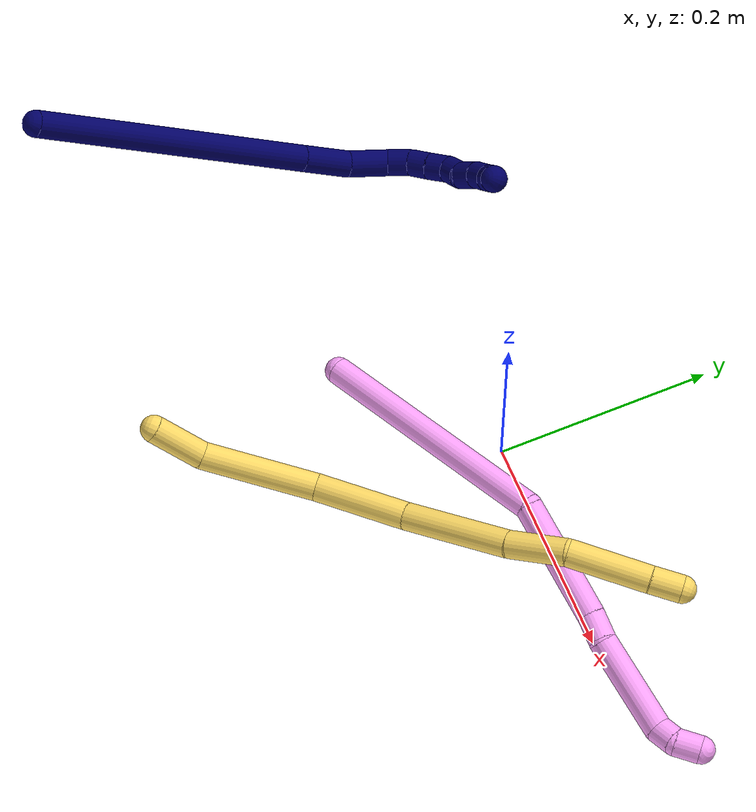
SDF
<sdf version="1.7">
 <world name="default">
  <model name="4">
   <static>0</static>
   <link name="4">
    <collision name="collision-cylinder-e_1_1_4">
     <pose>0.038734 0.073724 0.080652 -0.740551 0.340659 -0.133333</pose>
     <geometry><cylinder><radius>0.0125</radius><length>0.231864</length></cylinder></geometry>
     <surface>
      <friction><ode><mu>1.16</mu><mu2>1.16</mu2><slip1>0</slip1><slip2>0</slip2></ode></friction>
      <contact><ode><kp>1e+06</kp><kd>1</kd><max_vel>0</max_vel><min_depth>0.001</min_depth></ode></contact>
     </surface>
    </collision>
    <visual name="visual-cylinder-e_1_1_4">
     <pose>0.038734 0.073724 0.080652 -0.740551 0.340659 -0.133333</pose>
     <geometry><cylinder><radius>0.0125</radius><length>0.231864</length></cylinder></geometry>
     <material><ambient>1 0.65098 0.996078 1</ambient></material>
    </visual>
    <collision name="collision-cylinder-e_2_4_5">
     <pose>0.108981 0.189998 0.176767 -1.22223 0.608088 -0.432761</pose>
     <geometry><cylinder><radius>0.0125</radius><length>0.110323</length></cylinder></geometry>
     <surface>
      <friction><ode><mu>1.16</mu><mu2>1.16</mu2><slip1>0</slip1><slip2>0</slip2></ode></friction>
      <contact><ode><kp>1e+06</kp><kd>1</kd><max_vel>0</max_vel><min_depth>0.001</min_depth></ode></contact>
     </surface>
    </collision>
    <visual name="visual-cylinder-e_2_4_5">
     <pose>0.108981 0.189998 0.176767 -1.22223 0.608088 -0.432761</pose>
     <geometry><cylinder><radius>0.0125</radius><length>0.110323</length></cylinder></geometry>
     <material><ambient>1 0.65098 0.996078 1</ambient></material>
    </visual>
    <collision name="collision-cylinder-e_3_5_6">
     <pose>0.149361 0.240576 0.196699 -1.06286 0.767655 -0.466179</pose>
     <geometry><cylinder><radius>0.0125</radius><length>0.025535</length></cylinder></geometry>
     <surface>
      <friction><ode><mu>1.16</mu><mu2>1.16</mu2><slip1>0</slip1><slip2>0</slip2></ode></friction>
      <contact><ode><kp>1e+06</kp><kd>1</kd><max_vel>0</max_vel><min_depth>0.001</min_depth></ode></contact>
     </surface>
    </collision>
    <visual name="visual-cylinder-e_3_5_6">
     <pose>0.149361 0.240576 0.196699 -1.06286 0.767655 -0.466179</pose>
     <geometry><cylinder><radius>0.0125</radius><length>0.025535</length></cylinder></geometry>
     <material><ambient>1 0.65098 0.996078 1</ambient></material>
    </visual>
    <collision name="collision-cylinder-e_4_6_7">
     <pose>0.181493 0.284481 0.213299 -1.2447 0.550854 -0.400101</pose>
     <geometry><cylinder><radius>0.0125</radius><length>0.088897</length></cylinder></geometry>
     <surface>
      <friction><ode><mu>1.16</mu><mu2>1.16</mu2><slip1>0</slip1><slip2>0</slip2></ode></friction>
      <contact><ode><kp>1e+06</kp><kd>1</kd><max_vel>0</max_vel><min_depth>0.001</min_depth></ode></contact>
     </surface>
    </collision>
    <visual name="visual-cylinder-e_4_6_7">
     <pose>0.181493 0.284481 0.213299 -1.2447 0.550854 -0.400101</pose>
     <geometry><cylinder><radius>0.0125</radius><length>0.088897</length></cylinder></geometry>
     <material><ambient>1 0.65098 0.996078 1</ambient></material>
    </visual>
    <collision name="collision-cylinder-e_5_7_8">
     <pose>0.208508 0.32636 0.23268 -0.691646 0.379238 -0.138082</pose>
     <geometry><cylinder><radius>0.0125</radius><length>0.02026</length></cylinder></geometry>
     <surface>
      <friction><ode><mu>1.16</mu><mu2>1.16</mu2><slip1>0</slip1><slip2>0</slip2></ode></friction>
      <contact><ode><kp>1e+06</kp><kd>1</kd><max_vel>0</max_vel><min_depth>0.001</min_depth></ode></contact>
     </surface>
    </collision>
    <visual name="visual-cylinder-e_5_7_8">
     <pose>0.208508 0.32636 0.23268 -0.691646 0.379238 -0.138082</pose>
     <geometry><cylinder><radius>0.0125</radius><length>0.02026</length></cylinder></geometry>
     <material><ambient>1 0.65098 0.996078 1</ambient></material>
    </visual>
    <collision name="collision-cylinder-e_6_8_2">
     <pose>0.211195 0.341542 0.246873 -0.923102 -0.092106 0.045836</pose>
     <geometry><cylinder><radius>0.0125</radius><length>0.023121</length></cylinder></geometry>
     <surface>
      <friction><ode><mu>1.16</mu><mu2>1.16</mu2><slip1>0</slip1><slip2>0</slip2></ode></friction>
      <contact><ode><kp>1e+06</kp><kd>1</kd><max_vel>0</max_vel><min_depth>0.001</min_depth></ode></contact>
     </surface>
    </collision>
    <visual name="visual-cylinder-e_6_8_2">
     <pose>0.211195 0.341542 0.246873 -0.923102 -0.092106 0.045836</pose>
     <geometry><cylinder><radius>0.0125</radius><length>0.023121</length></cylinder></geometry>
     <material><ambient>1 0.65098 0.996078 1</ambient></material>
    </visual>
    <collision name="collision-sphere-2">
     <pose>0.210132 0.350722 0.253818 0 -0 0</pose>
     <geometry><sphere><radius>0.0125</radius></sphere></geometry>
     <surface>
      <friction><ode><mu>1.16</mu><mu2>1.16</mu2><slip1>0</slip1><slip2>0</slip2></ode></friction>
      <contact><ode><kp>1e+06</kp><kd>1</kd><max_vel>0</max_vel><min_depth>0.001</min_depth></ode></contact>
     </surface>
    </collision>
    <visual name="visual-sphere-2">
     <pose>0.210132 0.350722 0.253818 0 -0 0</pose>
     <geometry><sphere><radius>0.0125</radius></sphere></geometry>
     <material><ambient>1 0.65098 0.996078 1</ambient></material>
    </visual>
    <collision name="collision-sphere-4">
     <pose>0.077468 0.147448 0.161304 0 -0 0</pose>
     <geometry><sphere><radius>0.0125</radius></sphere></geometry>
     <surface>
      <friction><ode><mu>1.16</mu><mu2>1.16</mu2><slip1>0</slip1><slip2>0</slip2></ode></friction>
      <contact><ode><kp>1e+06</kp><kd>1</kd><max_vel>0</max_vel><min_depth>0.001</min_depth></ode></contact>
     </surface>
    </collision>
    <visual name="visual-sphere-4">
     <pose>0.077468 0.147448 0.161304 0 -0 0</pose>
     <geometry><sphere><radius>0.0125</radius></sphere></geometry>
     <material><ambient>1 0.65098 0.996078 1</ambient></material>
    </visual>
    <collision name="collision-sphere-1">
     <geometry><sphere><radius>0.0125</radius></sphere></geometry>
     <surface>
      <friction><ode><mu>1.16</mu><mu2>1.16</mu2><slip1>0</slip1><slip2>0</slip2></ode></friction>
      <contact><ode><kp>1e+06</kp><kd>1</kd><max_vel>0</max_vel><min_depth>0.001</min_depth></ode></contact>
     </surface>
    </collision>
    <visual name="visual-sphere-1">
     <geometry><sphere><radius>0.0125</radius></sphere></geometry>
     <material><ambient>1 0.65098 0.996078 1</ambient></material>
    </visual>
    <collision name="collision-sphere-8">
     <pose>0.212258 0.332362 0.239927 0 -0 0</pose>
     <geometry><sphere><radius>0.0125</radius></sphere></geometry>
     <surface>
      <friction><ode><mu>1.16</mu><mu2>1.16</mu2><slip1>0</slip1><slip2>0</slip2></ode></friction>
      <contact><ode><kp>1e+06</kp><kd>1</kd><max_vel>0</max_vel><min_depth>0.001</min_depth></ode></contact>
     </surface>
    </collision>
    <visual name="visual-sphere-8">
     <pose>0.212258 0.332362 0.239927 0 -0 0</pose>
     <geometry><sphere><radius>0.0125</radius></sphere></geometry>
     <material><ambient>1 0.65098 0.996078 1</ambient></material>
    </visual>
    <collision name="collision-sphere-5">
     <pose>0.140495 0.232549 0.19223 0 -0 0</pose>
     <geometry><sphere><radius>0.0125</radius></sphere></geometry>
     <surface>
      <friction><ode><mu>1.16</mu><mu2>1.16</mu2><slip1>0</slip1><slip2>0</slip2></ode></friction>
      <contact><ode><kp>1e+06</kp><kd>1</kd><max_vel>0</max_vel><min_depth>0.001</min_depth></ode></contact>
     </surface>
    </collision>
    <visual name="visual-sphere-5">
     <pose>0.140495 0.232549 0.19223 0 -0 0</pose>
     <geometry><sphere><radius>0.0125</radius></sphere></geometry>
     <material><ambient>1 0.65098 0.996078 1</ambient></material>
    </visual>
    <collision name="collision-sphere-6">
     <pose>0.158228 0.248603 0.201167 0 -0 0</pose>
     <geometry><sphere><radius>0.0125</radius></sphere></geometry>
     <surface>
      <friction><ode><mu>1.16</mu><mu2>1.16</mu2><slip1>0</slip1><slip2>0</slip2></ode></friction>
      <contact><ode><kp>1e+06</kp><kd>1</kd><max_vel>0</max_vel><min_depth>0.001</min_depth></ode></contact>
     </surface>
    </collision>
    <visual name="visual-sphere-6">
     <pose>0.158228 0.248603 0.201167 0 -0 0</pose>
     <geometry><sphere><radius>0.0125</radius></sphere></geometry>
     <material><ambient>1 0.65098 0.996078 1</ambient></material>
    </visual>
    <collision name="collision-sphere-7">
     <pose>0.204758 0.320358 0.225432 0 -0 0</pose>
     <geometry><sphere><radius>0.0125</radius></sphere></geometry>
     <surface>
      <friction><ode><mu>1.16</mu><mu2>1.16</mu2><slip1>0</slip1><slip2>0</slip2></ode></friction>
      <contact><ode><kp>1e+06</kp><kd>1</kd><max_vel>0</max_vel><min_depth>0.001</min_depth></ode></contact>
     </surface>
    </collision>
    <visual name="visual-sphere-7">
     <pose>0.204758 0.320358 0.225432 0 -0 0</pose>
     <geometry><sphere><radius>0.0125</radius></sphere></geometry>
     <material><ambient>1 0.65098 0.996078 1</ambient></material>
    </visual>
    <inertial>
     <pose>0.100119 0.167993 0.145216 0 -0 0</pose>
     <mass>0.5</mass>
     <inertia>
      <ixx>0.000943</ixx>
      <ixy>0</ixy>
      <ixz>0</ixz>
      <iyy>0.000729</iyy>
      <iyz>0</iyz>
      <izz>-0.001241</izz>
     </inertia>
    </inertial>
   </link>
   <pose>-0.126403 -0.106135 0.011962 -0.647681 -0.063571 -0.805435</pose>
  </model>
  <model name="5">
   <static>0</static>
   <link name="5">
    <collision name="collision-cylinder-e_1_1_4">
     <pose>-0.003691 -0.006104 -0.023573 2.88822 -0.150417 -1.06843</pose>
     <geometry><cylinder><radius>0.0125</radius><length>0.049257</length></cylinder></geometry>
     <surface>
      <friction><ode><mu>1.16</mu><mu2>1.16</mu2><slip1>0</slip1><slip2>0</slip2></ode></friction>
      <contact><ode><kp>1e+06</kp><kd>1</kd><max_vel>0</max_vel><min_depth>0.001</min_depth></ode></contact>
     </surface>
    </collision>
    <visual name="visual-cylinder-e_1_1_4">
     <pose>-0.003691 -0.006104 -0.023573 2.88822 -0.150417 -1.06843</pose>
     <geometry><cylinder><radius>0.0125</radius><length>0.049257</length></cylinder></geometry>
     <material><ambient>1 0.858824 0.4 1</ambient></material>
    </visual>
    <collision name="collision-cylinder-e_2_4_5">
     <pose>-0.014434 -0.008838 -0.099311 -3.07708 -0.134116 2.2458</pose>
     <geometry><cylinder><radius>0.0125</radius><length>0.105497</length></cylinder></geometry>
     <surface>
      <friction><ode><mu>1.16</mu><mu2>1.16</mu2><slip1>0</slip1><slip2>0</slip2></ode></friction>
      <contact><ode><kp>1e+06</kp><kd>1</kd><max_vel>0</max_vel><min_depth>0.001</min_depth></ode></contact>
     </surface>
    </collision>
    <visual name="visual-cylinder-e_2_4_5">
     <pose>-0.014434 -0.008838 -0.099311 -3.07708 -0.134116 2.2458</pose>
     <geometry><cylinder><radius>0.0125</radius><length>0.105497</length></cylinder></geometry>
     <material><ambient>1 0.858824 0.4 1</ambient></material>
    </visual>
    <collision name="collision-cylinder-e_3_5_6">
     <pose>-0.015018 0.004647 -0.192981 -2.90255 0.150313 -1.12008</pose>
     <geometry><cylinder><radius>0.0125</radius><length>0.08641</length></cylinder></geometry>
     <surface>
      <friction><ode><mu>1.16</mu><mu2>1.16</mu2><slip1>0</slip1><slip2>0</slip2></ode></friction>
      <contact><ode><kp>1e+06</kp><kd>1</kd><max_vel>0</max_vel><min_depth>0.001</min_depth></ode></contact>
     </surface>
    </collision>
    <visual name="visual-cylinder-e_3_5_6">
     <pose>-0.015018 0.004647 -0.192981 -2.90255 0.150313 -1.12008</pose>
     <geometry><cylinder><radius>0.0125</radius><length>0.08641</length></cylinder></geometry>
     <material><ambient>1 0.858824 0.4 1</ambient></material>
    </visual>
    <collision name="collision-cylinder-e_4_6_7">
     <pose>0.00485 0.033464 -0.279424 -2.7472 0.268598 -1.18925</pose>
     <geometry><cylinder><radius>0.0125</radius><length>0.100973</length></cylinder></geometry>
     <surface>
      <friction><ode><mu>1.16</mu><mu2>1.16</mu2><slip1>0</slip1><slip2>0</slip2></ode></friction>
      <contact><ode><kp>1e+06</kp><kd>1</kd><max_vel>0</max_vel><min_depth>0.001</min_depth></ode></contact>
     </surface>
    </collision>
    <visual name="visual-cylinder-e_4_6_7">
     <pose>0.00485 0.033464 -0.279424 -2.7472 0.268598 -1.18925</pose>
     <geometry><cylinder><radius>0.0125</radius><length>0.100973</length></cylinder></geometry>
     <material><ambient>1 0.858824 0.4 1</ambient></material>
    </visual>
    <collision name="collision-cylinder-e_5_7_8">
     <pose>0.022345 0.064028 -0.3488 -2.68976 0.149686 -0.630705</pose>
     <geometry><cylinder><radius>0.0125</radius><length>0.05494</length></cylinder></geometry>
     <surface>
      <friction><ode><mu>1.16</mu><mu2>1.16</mu2><slip1>0</slip1><slip2>0</slip2></ode></friction>
      <contact><ode><kp>1e+06</kp><kd>1</kd><max_vel>0</max_vel><min_depth>0.001</min_depth></ode></contact>
     </surface>
    </collision>
    <visual name="visual-cylinder-e_5_7_8">
     <pose>0.022345 0.064028 -0.3488 -2.68976 0.149686 -0.630705</pose>
     <geometry><cylinder><radius>0.0125</radius><length>0.05494</length></cylinder></geometry>
     <material><ambient>1 0.858824 0.4 1</ambient></material>
    </visual>
    <collision name="collision-cylinder-e_6_8_9">
     <pose>0.028153 0.081507 -0.41018 -2.99063 0.045776 -0.587856</pose>
     <geometry><cylinder><radius>0.0125</radius><length>0.074814</length></cylinder></geometry>
     <surface>
      <friction><ode><mu>1.16</mu><mu2>1.16</mu2><slip1>0</slip1><slip2>0</slip2></ode></friction>
      <contact><ode><kp>1e+06</kp><kd>1</kd><max_vel>0</max_vel><min_depth>0.001</min_depth></ode></contact>
     </surface>
    </collision>
    <visual name="visual-cylinder-e_6_8_9">
     <pose>0.028153 0.081507 -0.41018 -2.99063 0.045776 -0.587856</pose>
     <geometry><cylinder><radius>0.0125</radius><length>0.074814</length></cylinder></geometry>
     <material><ambient>1 0.858824 0.4 1</ambient></material>
    </visual>
    <collision name="collision-cylinder-e_7_9_2">
     <pose>0.02964 0.088952 -0.461057 -3.01137 -0.016008 0.244301</pose>
     <geometry><cylinder><radius>0.0125</radius><length>0.028109</length></cylinder></geometry>
     <surface>
      <friction><ode><mu>1.16</mu><mu2>1.16</mu2><slip1>0</slip1><slip2>0</slip2></ode></friction>
      <contact><ode><kp>1e+06</kp><kd>1</kd><max_vel>0</max_vel><min_depth>0.001</min_depth></ode></contact>
     </surface>
    </collision>
    <visual name="visual-cylinder-e_7_9_2">
     <pose>0.02964 0.088952 -0.461057 -3.01137 -0.016008 0.244301</pose>
     <geometry><cylinder><radius>0.0125</radius><length>0.028109</length></cylinder></geometry>
     <material><ambient>1 0.858824 0.4 1</ambient></material>
    </visual>
    <collision name="collision-sphere-2">
     <pose>0.029415 0.090777 -0.47499 0 -0 0</pose>
     <geometry><sphere><radius>0.0125</radius></sphere></geometry>
     <surface>
      <friction><ode><mu>1.16</mu><mu2>1.16</mu2><slip1>0</slip1><slip2>0</slip2></ode></friction>
      <contact><ode><kp>1e+06</kp><kd>1</kd><max_vel>0</max_vel><min_depth>0.001</min_depth></ode></contact>
     </surface>
    </collision>
    <visual name="visual-sphere-2">
     <pose>0.029415 0.090777 -0.47499 0 -0 0</pose>
     <geometry><sphere><radius>0.0125</radius></sphere></geometry>
     <material><ambient>1 0.858824 0.4 1</ambient></material>
    </visual>
    <collision name="collision-sphere-9">
     <pose>0.029865 0.087127 -0.447123 0 -0 0</pose>
     <geometry><sphere><radius>0.0125</radius></sphere></geometry>
     <surface>
      <friction><ode><mu>1.16</mu><mu2>1.16</mu2><slip1>0</slip1><slip2>0</slip2></ode></friction>
      <contact><ode><kp>1e+06</kp><kd>1</kd><max_vel>0</max_vel><min_depth>0.001</min_depth></ode></contact>
     </surface>
    </collision>
    <visual name="visual-sphere-9">
     <pose>0.029865 0.087127 -0.447123 0 -0 0</pose>
     <geometry><sphere><radius>0.0125</radius></sphere></geometry>
     <material><ambient>1 0.858824 0.4 1</ambient></material>
    </visual>
    <collision name="collision-sphere-4">
     <pose>-0.007381 -0.012208 -0.047145 0 -0 0</pose>
     <geometry><sphere><radius>0.0125</radius></sphere></geometry>
     <surface>
      <friction><ode><mu>1.16</mu><mu2>1.16</mu2><slip1>0</slip1><slip2>0</slip2></ode></friction>
      <contact><ode><kp>1e+06</kp><kd>1</kd><max_vel>0</max_vel><min_depth>0.001</min_depth></ode></contact>
     </surface>
    </collision>
    <visual name="visual-sphere-4">
     <pose>-0.007381 -0.012208 -0.047145 0 -0 0</pose>
     <geometry><sphere><radius>0.0125</radius></sphere></geometry>
     <material><ambient>1 0.858824 0.4 1</ambient></material>
    </visual>
    <collision name="collision-sphere-1">
     <geometry><sphere><radius>0.0125</radius></sphere></geometry>
     <surface>
      <friction><ode><mu>1.16</mu><mu2>1.16</mu2><slip1>0</slip1><slip2>0</slip2></ode></friction>
      <contact><ode><kp>1e+06</kp><kd>1</kd><max_vel>0</max_vel><min_depth>0.001</min_depth></ode></contact>
     </surface>
    </collision>
    <visual name="visual-sphere-1">
     <geometry><sphere><radius>0.0125</radius></sphere></geometry>
     <material><ambient>1 0.858824 0.4 1</ambient></material>
    </visual>
    <collision name="collision-sphere-8">
     <pose>0.026442 0.075887 -0.373237 0 -0 0</pose>
     <geometry><sphere><radius>0.0125</radius></sphere></geometry>
     <surface>
      <friction><ode><mu>1.16</mu><mu2>1.16</mu2><slip1>0</slip1><slip2>0</slip2></ode></friction>
      <contact><ode><kp>1e+06</kp><kd>1</kd><max_vel>0</max_vel><min_depth>0.001</min_depth></ode></contact>
     </surface>
    </collision>
    <visual name="visual-sphere-8">
     <pose>0.026442 0.075887 -0.373237 0 -0 0</pose>
     <geometry><sphere><radius>0.0125</radius></sphere></geometry>
     <material><ambient>1 0.858824 0.4 1</ambient></material>
    </visual>
    <collision name="collision-sphere-5">
     <pose>-0.021488 -0.005468 -0.151477 0 -0 0</pose>
     <geometry><sphere><radius>0.0125</radius></sphere></geometry>
     <surface>
      <friction><ode><mu>1.16</mu><mu2>1.16</mu2><slip1>0</slip1><slip2>0</slip2></ode></friction>
      <contact><ode><kp>1e+06</kp><kd>1</kd><max_vel>0</max_vel><min_depth>0.001</min_depth></ode></contact>
     </surface>
    </collision>
    <visual name="visual-sphere-5">
     <pose>-0.021488 -0.005468 -0.151477 0 -0 0</pose>
     <geometry><sphere><radius>0.0125</radius></sphere></geometry>
     <material><ambient>1 0.858824 0.4 1</ambient></material>
    </visual>
    <collision name="collision-sphere-6">
     <pose>-0.008548 0.014761 -0.234484 0 -0 0</pose>
     <geometry><sphere><radius>0.0125</radius></sphere></geometry>
     <surface>
      <friction><ode><mu>1.16</mu><mu2>1.16</mu2><slip1>0</slip1><slip2>0</slip2></ode></friction>
      <contact><ode><kp>1e+06</kp><kd>1</kd><max_vel>0</max_vel><min_depth>0.001</min_depth></ode></contact>
     </surface>
    </collision>
    <visual name="visual-sphere-6">
     <pose>-0.008548 0.014761 -0.234484 0 -0 0</pose>
     <geometry><sphere><radius>0.0125</radius></sphere></geometry>
     <material><ambient>1 0.858824 0.4 1</ambient></material>
    </visual>
    <collision name="collision-sphere-7">
     <pose>0.018248 0.052168 -0.324363 0 -0 0</pose>
     <geometry><sphere><radius>0.0125</radius></sphere></geometry>
     <surface>
      <friction><ode><mu>1.16</mu><mu2>1.16</mu2><slip1>0</slip1><slip2>0</slip2></ode></friction>
      <contact><ode><kp>1e+06</kp><kd>1</kd><max_vel>0</max_vel><min_depth>0.001</min_depth></ode></contact>
     </surface>
    </collision>
    <visual name="visual-sphere-7">
     <pose>0.018248 0.052168 -0.324363 0 -0 0</pose>
     <geometry><sphere><radius>0.0125</radius></sphere></geometry>
     <material><ambient>1 0.858824 0.4 1</ambient></material>
    </visual>
    <inertial>
     <pose>0.003309 0.029327 -0.238676 0 -0 0</pose>
     <mass>0.5</mass>
     <inertia>
      <ixx>-4.3e-05</ixx>
      <ixy>0</ixy>
      <ixz>0</ixz>
      <iyy>-0.000115</iyy>
      <iyz>0</iyz>
      <izz>-0.000121</izz>
     </inertia>
    </inertial>
   </link>
   <pose>-0.109545 -0.287988 0.069973 1.37385 -0.497408 -0.668793</pose>
  </model>
  <model name="7">
   <static>0</static>
   <link name="7">
    <collision name="collision-cylinder-e_1_1_4">
     <pose>0.023319 0.042674 -0.125709 -2.81433 0.173881 -0.971435</pose>
     <geometry><cylinder><radius>0.0125</radius><length>0.269574</length></cylinder></geometry>
     <surface>
      <friction><ode><mu>1.16</mu><mu2>1.16</mu2><slip1>0</slip1><slip2>0</slip2></ode></friction>
      <contact><ode><kp>1e+06</kp><kd>1</kd><max_vel>0</max_vel><min_depth>0.001</min_depth></ode></contact>
     </surface>
    </collision>
    <visual name="visual-cylinder-e_1_1_4">
     <pose>0.023319 0.042674 -0.125709 -2.81433 0.173881 -0.971435</pose>
     <geometry><cylinder><radius>0.0125</radius><length>0.269574</length></cylinder></geometry>
     <material><ambient>0.003922 0 0.403922 1</ambient></material>
    </visual>
    <collision name="collision-cylinder-e_2_4_5">
     <pose>0.051346 0.093453 -0.273281 -2.78659 0.199245 -1.01668</pose>
     <geometry><cylinder><radius>0.0125</radius><length>0.047576</length></cylinder></geometry>
     <surface>
      <friction><ode><mu>1.16</mu><mu2>1.16</mu2><slip1>0</slip1><slip2>0</slip2></ode></friction>
      <contact><ode><kp>1e+06</kp><kd>1</kd><max_vel>0</max_vel><min_depth>0.001</min_depth></ode></contact>
     </surface>
    </collision>
    <visual name="visual-cylinder-e_2_4_5">
     <pose>0.051346 0.093453 -0.273281 -2.78659 0.199245 -1.01668</pose>
     <geometry><cylinder><radius>0.0125</radius><length>0.047576</length></cylinder></geometry>
     <material><ambient>0.003922 0 0.403922 1</ambient></material>
    </visual>
    <collision name="collision-cylinder-e_3_5_6">
     <pose>0.061762 0.112971 -0.309161 -2.45824 0.305836 -0.817899</pose>
     <geometry><cylinder><radius>0.0125</radius><length>0.037909</length></cylinder></geometry>
     <surface>
      <friction><ode><mu>1.16</mu><mu2>1.16</mu2><slip1>0</slip1><slip2>0</slip2></ode></friction>
      <contact><ode><kp>1e+06</kp><kd>1</kd><max_vel>0</max_vel><min_depth>0.001</min_depth></ode></contact>
     </surface>
    </collision>
    <visual name="visual-cylinder-e_3_5_6">
     <pose>0.061762 0.112971 -0.309161 -2.45824 0.305836 -0.817899</pose>
     <geometry><cylinder><radius>0.0125</radius><length>0.037909</length></cylinder></geometry>
     <material><ambient>0.003922 0 0.403922 1</ambient></material>
    </visual>
    <collision name="collision-cylinder-e_4_6_7">
     <pose>0.073453 0.132305 -0.328041 -2.12151 0.57202 -0.967964</pose>
     <geometry><cylinder><radius>0.0125</radius><length>0.02211</length></cylinder></geometry>
     <surface>
      <friction><ode><mu>1.16</mu><mu2>1.16</mu2><slip1>0</slip1><slip2>0</slip2></ode></friction>
      <contact><ode><kp>1e+06</kp><kd>1</kd><max_vel>0</max_vel><min_depth>0.001</min_depth></ode></contact>
     </surface>
    </collision>
    <visual name="visual-cylinder-e_4_6_7">
     <pose>0.073453 0.132305 -0.328041 -2.12151 0.57202 -0.967964</pose>
     <geometry><cylinder><radius>0.0125</radius><length>0.02211</length></cylinder></geometry>
     <material><ambient>0.003922 0 0.403922 1</ambient></material>
    </visual>
    <collision name="collision-cylinder-e_5_7_8">
     <pose>0.086996 0.146412 -0.335252 -1.93329 0.851727 -1.16282</pose>
     <geometry><cylinder><radius>0.0125</radius><length>0.020091</length></cylinder></geometry>
     <surface>
      <friction><ode><mu>1.16</mu><mu2>1.16</mu2><slip1>0</slip1><slip2>0</slip2></ode></friction>
      <contact><ode><kp>1e+06</kp><kd>1</kd><max_vel>0</max_vel><min_depth>0.001</min_depth></ode></contact>
     </surface>
    </collision>
    <visual name="visual-cylinder-e_5_7_8">
     <pose>0.086996 0.146412 -0.335252 -1.93329 0.851727 -1.16282</pose>
     <geometry><cylinder><radius>0.0125</radius><length>0.020091</length></cylinder></geometry>
     <material><ambient>0.003922 0 0.403922 1</ambient></material>
    </visual>
    <collision name="collision-cylinder-e_6_8_9">
     <pose>0.102109 0.159079 -0.339623 -1.87367 0.838718 -1.09018</pose>
     <geometry><cylinder><radius>0.0125</radius><length>0.020315</length></cylinder></geometry>
     <surface>
      <friction><ode><mu>1.16</mu><mu2>1.16</mu2><slip1>0</slip1><slip2>0</slip2></ode></friction>
      <contact><ode><kp>1e+06</kp><kd>1</kd><max_vel>0</max_vel><min_depth>0.001</min_depth></ode></contact>
     </surface>
    </collision>
    <visual name="visual-cylinder-e_6_8_9">
     <pose>0.102109 0.159079 -0.339623 -1.87367 0.838718 -1.09018</pose>
     <geometry><cylinder><radius>0.0125</radius><length>0.020315</length></cylinder></geometry>
     <material><ambient>0.003922 0 0.403922 1</ambient></material>
    </visual>
    <collision name="collision-cylinder-e_7_9_10">
     <pose>0.118774 0.170123 -0.339189 -1.07647 1.05343 -0.668327</pose>
     <geometry><cylinder><radius>0.0125</radius><length>0.020964</length></cylinder></geometry>
     <surface>
      <friction><ode><mu>1.16</mu><mu2>1.16</mu2><slip1>0</slip1><slip2>0</slip2></ode></friction>
      <contact><ode><kp>1e+06</kp><kd>1</kd><max_vel>0</max_vel><min_depth>0.001</min_depth></ode></contact>
     </surface>
    </collision>
    <visual name="visual-cylinder-e_7_9_10">
     <pose>0.118774 0.170123 -0.339189 -1.07647 1.05343 -0.668327</pose>
     <geometry><cylinder><radius>0.0125</radius><length>0.020964</length></cylinder></geometry>
     <material><ambient>0.003922 0 0.403922 1</ambient></material>
    </visual>
    <collision name="collision-cylinder-e_8_10_11">
     <pose>0.134779 0.181963 -0.335463 -1.39851 0.751035 -0.640289</pose>
     <geometry><cylinder><radius>0.0125</radius><length>0.020208</length></cylinder></geometry>
     <surface>
      <friction><ode><mu>1.16</mu><mu2>1.16</mu2><slip1>0</slip1><slip2>0</slip2></ode></friction>
      <contact><ode><kp>1e+06</kp><kd>1</kd><max_vel>0</max_vel><min_depth>0.001</min_depth></ode></contact>
     </surface>
    </collision>
    <visual name="visual-cylinder-e_8_10_11">
     <pose>0.134779 0.181963 -0.335463 -1.39851 0.751035 -0.640289</pose>
     <geometry><cylinder><radius>0.0125</radius><length>0.020208</length></cylinder></geometry>
     <material><ambient>0.003922 0 0.403922 1</ambient></material>
    </visual>
    <collision name="collision-cylinder-e_9_11_12">
     <pose>0.149746 0.194724 -0.331805 -1.15958 0.932927 -0.637028</pose>
     <geometry><cylinder><radius>0.0125</radius><length>0.020094</length></cylinder></geometry>
     <surface>
      <friction><ode><mu>1.16</mu><mu2>1.16</mu2><slip1>0</slip1><slip2>0</slip2></ode></friction>
      <contact><ode><kp>1e+06</kp><kd>1</kd><max_vel>0</max_vel><min_depth>0.001</min_depth></ode></contact>
     </surface>
    </collision>
    <visual name="visual-cylinder-e_9_11_12">
     <pose>0.149746 0.194724 -0.331805 -1.15958 0.932927 -0.637028</pose>
     <geometry><cylinder><radius>0.0125</radius><length>0.020094</length></cylinder></geometry>
     <material><ambient>0.003922 0 0.403922 1</ambient></material>
    </visual>
    <collision name="collision-cylinder-e_10_12_2">
     <pose>0.164667 0.204818 -0.322799 -0.608675 0.704241 -0.229801</pose>
     <geometry><cylinder><radius>0.0125</radius><length>0.021159</length></cylinder></geometry>
     <surface>
      <friction><ode><mu>1.16</mu><mu2>1.16</mu2><slip1>0</slip1><slip2>0</slip2></ode></friction>
      <contact><ode><kp>1e+06</kp><kd>1</kd><max_vel>0</max_vel><min_depth>0.001</min_depth></ode></contact>
     </surface>
    </collision>
    <visual name="visual-cylinder-e_10_12_2">
     <pose>0.164667 0.204818 -0.322799 -0.608675 0.704241 -0.229801</pose>
     <geometry><cylinder><radius>0.0125</radius><length>0.021159</length></cylinder></geometry>
     <material><ambient>0.003922 0 0.403922 1</ambient></material>
    </visual>
    <collision name="collision-sphere-2">
     <pose>0.171517 0.209428 -0.316184 0 -0 0</pose>
     <geometry><sphere><radius>0.0125</radius></sphere></geometry>
     <surface>
      <friction><ode><mu>1.16</mu><mu2>1.16</mu2><slip1>0</slip1><slip2>0</slip2></ode></friction>
      <contact><ode><kp>1e+06</kp><kd>1</kd><max_vel>0</max_vel><min_depth>0.001</min_depth></ode></contact>
     </surface>
    </collision>
    <visual name="visual-sphere-2">
     <pose>0.171517 0.209428 -0.316184 0 -0 0</pose>
     <geometry><sphere><radius>0.0125</radius></sphere></geometry>
     <material><ambient>0.003922 0 0.403922 1</ambient></material>
    </visual>
    <collision name="collision-sphere-12">
     <pose>0.157817 0.200208 -0.329414 0 -0 0</pose>
     <geometry><sphere><radius>0.0125</radius></sphere></geometry>
     <surface>
      <friction><ode><mu>1.16</mu><mu2>1.16</mu2><slip1>0</slip1><slip2>0</slip2></ode></friction>
      <contact><ode><kp>1e+06</kp><kd>1</kd><max_vel>0</max_vel><min_depth>0.001</min_depth></ode></contact>
     </surface>
    </collision>
    <visual name="visual-sphere-12">
     <pose>0.157817 0.200208 -0.329414 0 -0 0</pose>
     <geometry><sphere><radius>0.0125</radius></sphere></geometry>
     <material><ambient>0.003922 0 0.403922 1</ambient></material>
    </visual>
    <collision name="collision-sphere-11">
     <pose>0.141674 0.18924 -0.334197 0 -0 0</pose>
     <geometry><sphere><radius>0.0125</radius></sphere></geometry>
     <surface>
      <friction><ode><mu>1.16</mu><mu2>1.16</mu2><slip1>0</slip1><slip2>0</slip2></ode></friction>
      <contact><ode><kp>1e+06</kp><kd>1</kd><max_vel>0</max_vel><min_depth>0.001</min_depth></ode></contact>
     </surface>
    </collision>
    <visual name="visual-sphere-11">
     <pose>0.141674 0.18924 -0.334197 0 -0 0</pose>
     <geometry><sphere><radius>0.0125</radius></sphere></geometry>
     <material><ambient>0.003922 0 0.403922 1</ambient></material>
    </visual>
    <collision name="collision-sphere-10">
     <pose>0.127884 0.174687 -0.336729 0 -0 0</pose>
     <geometry><sphere><radius>0.0125</radius></sphere></geometry>
     <surface>
      <friction><ode><mu>1.16</mu><mu2>1.16</mu2><slip1>0</slip1><slip2>0</slip2></ode></friction>
      <contact><ode><kp>1e+06</kp><kd>1</kd><max_vel>0</max_vel><min_depth>0.001</min_depth></ode></contact>
     </surface>
    </collision>
    <visual name="visual-sphere-10">
     <pose>0.127884 0.174687 -0.336729 0 -0 0</pose>
     <geometry><sphere><radius>0.0125</radius></sphere></geometry>
     <material><ambient>0.003922 0 0.403922 1</ambient></material>
    </visual>
    <collision name="collision-sphere-9">
     <pose>0.109664 0.16556 -0.341648 0 -0 0</pose>
     <geometry><sphere><radius>0.0125</radius></sphere></geometry>
     <surface>
      <friction><ode><mu>1.16</mu><mu2>1.16</mu2><slip1>0</slip1><slip2>0</slip2></ode></friction>
      <contact><ode><kp>1e+06</kp><kd>1</kd><max_vel>0</max_vel><min_depth>0.001</min_depth></ode></contact>
     </surface>
    </collision>
    <visual name="visual-sphere-9">
     <pose>0.109664 0.16556 -0.341648 0 -0 0</pose>
     <geometry><sphere><radius>0.0125</radius></sphere></geometry>
     <material><ambient>0.003922 0 0.403922 1</ambient></material>
    </visual>
    <collision name="collision-sphere-4">
     <pose>0.046638 0.085348 -0.251417 0 -0 0</pose>
     <geometry><sphere><radius>0.0125</radius></sphere></geometry>
     <surface>
      <friction><ode><mu>1.16</mu><mu2>1.16</mu2><slip1>0</slip1><slip2>0</slip2></ode></friction>
      <contact><ode><kp>1e+06</kp><kd>1</kd><max_vel>0</max_vel><min_depth>0.001</min_depth></ode></contact>
     </surface>
    </collision>
    <visual name="visual-sphere-4">
     <pose>0.046638 0.085348 -0.251417 0 -0 0</pose>
     <geometry><sphere><radius>0.0125</radius></sphere></geometry>
     <material><ambient>0.003922 0 0.403922 1</ambient></material>
    </visual>
    <collision name="collision-sphere-1">
     <geometry><sphere><radius>0.0125</radius></sphere></geometry>
     <surface>
      <friction><ode><mu>1.16</mu><mu2>1.16</mu2><slip1>0</slip1><slip2>0</slip2></ode></friction>
      <contact><ode><kp>1e+06</kp><kd>1</kd><max_vel>0</max_vel><min_depth>0.001</min_depth></ode></contact>
     </surface>
    </collision>
    <visual name="visual-sphere-1">
     <geometry><sphere><radius>0.0125</radius></sphere></geometry>
     <material><ambient>0.003922 0 0.403922 1</ambient></material>
    </visual>
    <collision name="collision-sphere-8">
     <pose>0.094554 0.152599 -0.337598 0 -0 0</pose>
     <geometry><sphere><radius>0.0125</radius></sphere></geometry>
     <surface>
      <friction><ode><mu>1.16</mu><mu2>1.16</mu2><slip1>0</slip1><slip2>0</slip2></ode></friction>
      <contact><ode><kp>1e+06</kp><kd>1</kd><max_vel>0</max_vel><min_depth>0.001</min_depth></ode></contact>
     </surface>
    </collision>
    <visual name="visual-sphere-8">
     <pose>0.094554 0.152599 -0.337598 0 -0 0</pose>
     <geometry><sphere><radius>0.0125</radius></sphere></geometry>
     <material><ambient>0.003922 0 0.403922 1</ambient></material>
    </visual>
    <collision name="collision-sphere-5">
     <pose>0.056055 0.101559 -0.295144 0 -0 0</pose>
     <geometry><sphere><radius>0.0125</radius></sphere></geometry>
     <surface>
      <friction><ode><mu>1.16</mu><mu2>1.16</mu2><slip1>0</slip1><slip2>0</slip2></ode></friction>
      <contact><ode><kp>1e+06</kp><kd>1</kd><max_vel>0</max_vel><min_depth>0.001</min_depth></ode></contact>
     </surface>
    </collision>
    <visual name="visual-sphere-5">
     <pose>0.056055 0.101559 -0.295144 0 -0 0</pose>
     <geometry><sphere><radius>0.0125</radius></sphere></geometry>
     <material><ambient>0.003922 0 0.403922 1</ambient></material>
    </visual>
    <collision name="collision-sphere-6">
     <pose>0.067469 0.124384 -0.323177 0 -0 0</pose>
     <geometry><sphere><radius>0.0125</radius></sphere></geometry>
     <surface>
      <friction><ode><mu>1.16</mu><mu2>1.16</mu2><slip1>0</slip1><slip2>0</slip2></ode></friction>
      <contact><ode><kp>1e+06</kp><kd>1</kd><max_vel>0</max_vel><min_depth>0.001</min_depth></ode></contact>
     </surface>
    </collision>
    <visual name="visual-sphere-6">
     <pose>0.067469 0.124384 -0.323177 0 -0 0</pose>
     <geometry><sphere><radius>0.0125</radius></sphere></geometry>
     <material><ambient>0.003922 0 0.403922 1</ambient></material>
    </visual>
    <collision name="collision-sphere-7">
     <pose>0.079438 0.140226 -0.332906 0 -0 0</pose>
     <geometry><sphere><radius>0.0125</radius></sphere></geometry>
     <surface>
      <friction><ode><mu>1.16</mu><mu2>1.16</mu2><slip1>0</slip1><slip2>0</slip2></ode></friction>
      <contact><ode><kp>1e+06</kp><kd>1</kd><max_vel>0</max_vel><min_depth>0.001</min_depth></ode></contact>
     </surface>
    </collision>
    <visual name="visual-sphere-7">
     <pose>0.079438 0.140226 -0.332906 0 -0 0</pose>
     <geometry><sphere><radius>0.0125</radius></sphere></geometry>
     <material><ambient>0.003922 0 0.403922 1</ambient></material>
    </visual>
    <inertial>
     <pose>0.056447 0.089642 -0.213769 0 -0 0</pose>
     <mass>0.5</mass>
     <inertia>
      <ixx>-0.000413</ixx>
      <ixy>0</ixy>
      <ixz>0</ixz>
      <iyy>-0.002141</iyy>
      <iyz>0</iyz>
      <izz>-0.000855</izz>
     </inertia>
    </inertial>
   </link>
   <pose>-0.383123 -0.288503 0.169021 0.694275 -0.142145 0.053065</pose>
  </model>
 </world>
</sdf>
